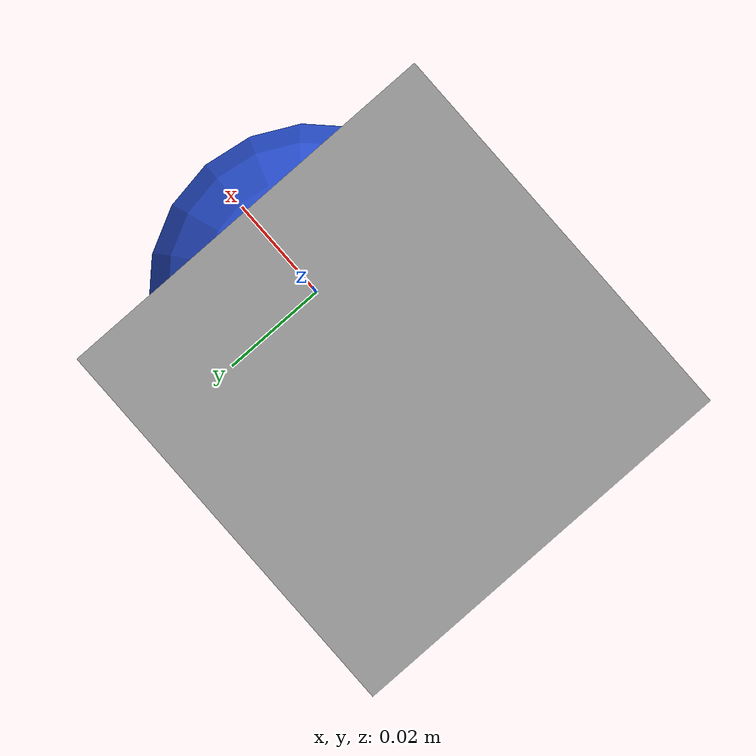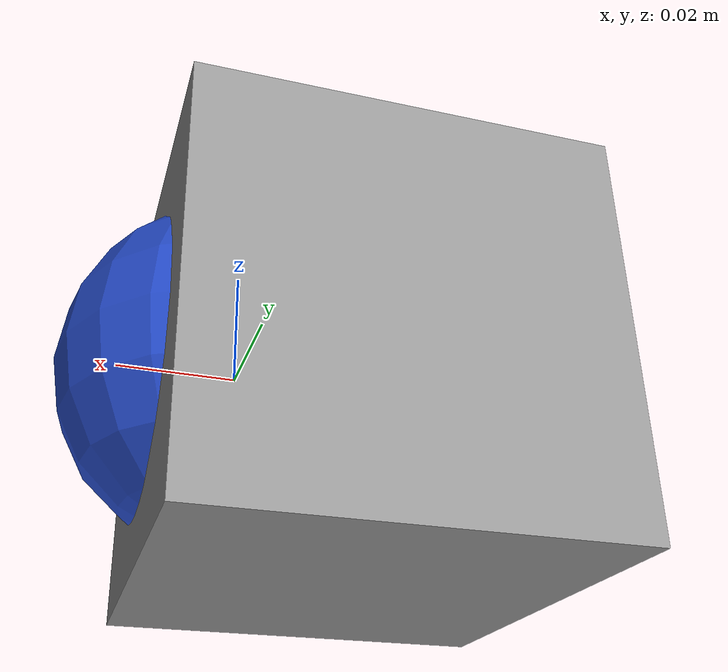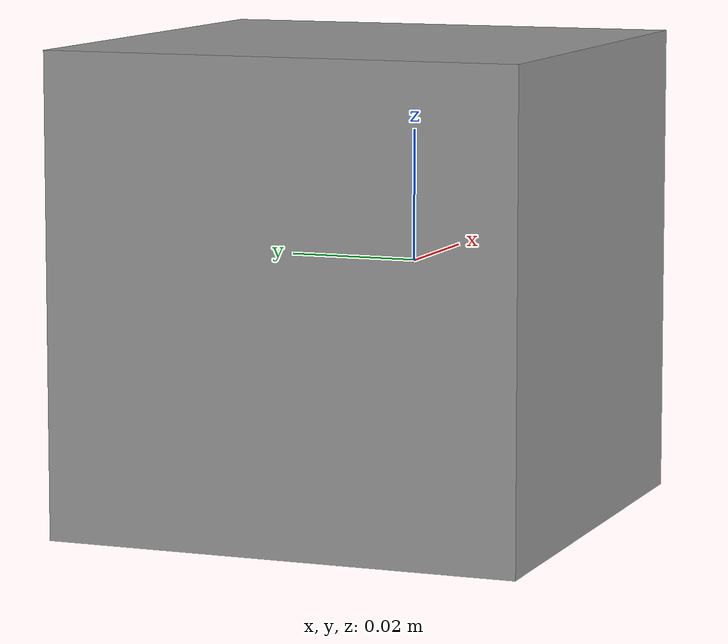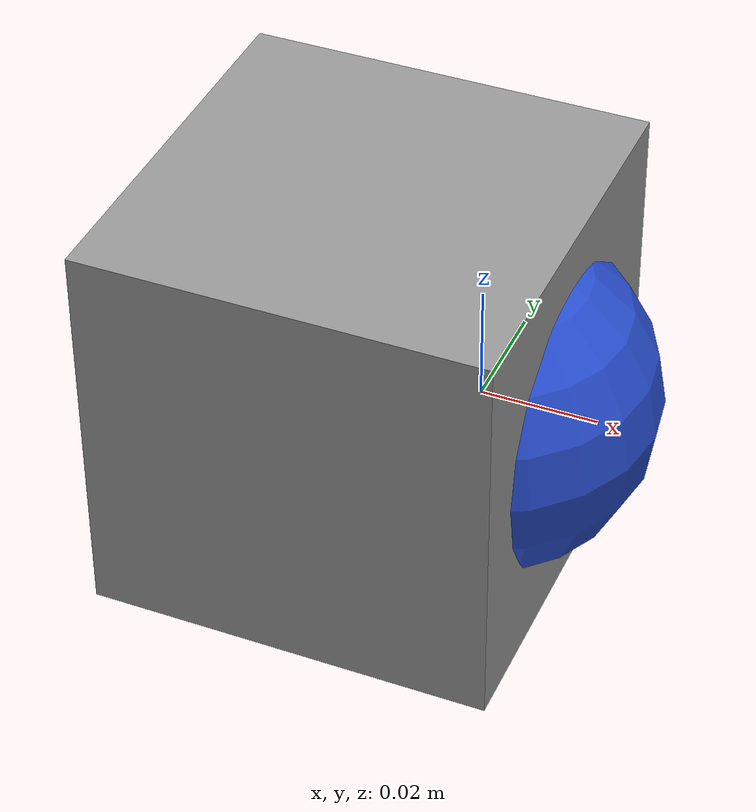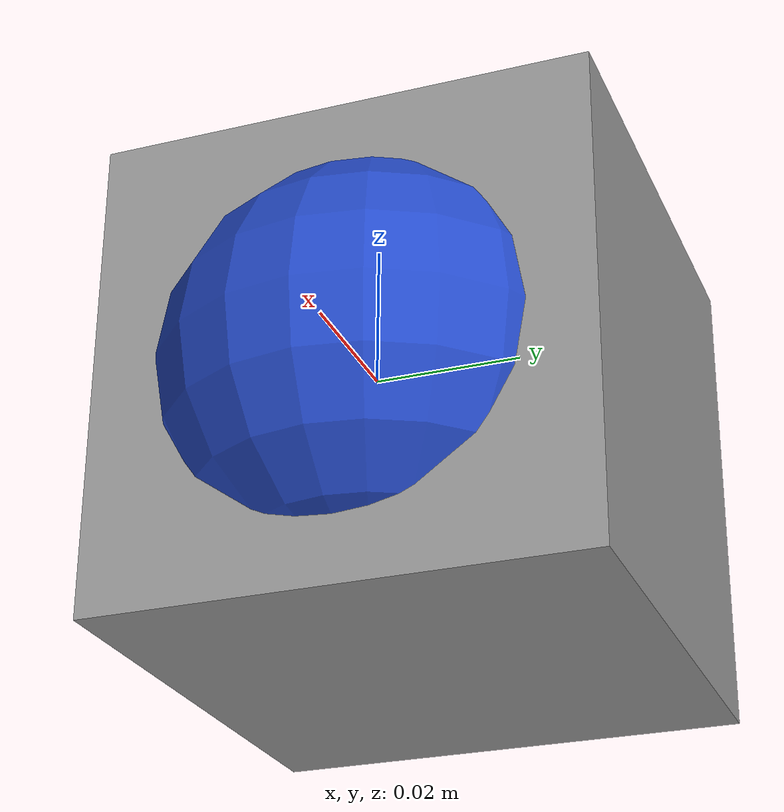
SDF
<?xml version='1.0'?>
<sdf version='1.7'>
  <model name='light'>
    <link name='link'>
      <inertial>
        <mass>0.001</mass>
        <inertia>
          <ixx>0.00000015</ixx>
          <ixy>0</ixy>
          <ixz>0</ixz>
          <iyy>0.00000015</iyy>
          <iyz>0</iyz>
          <izz>0.00000015</izz>
        </inertia>
        <pose>0 0 0 0 0 0</pose>
      </inertial>
      <self_collide>0</self_collide>
      <enable_wind>0</enable_wind>
      <kinematic>0</kinematic>
      <pose>0 0 0 0 0 0</pose>
      <gravity>1</gravity>
      <visual name='orb'>
        <geometry>
          <sphere>
            <radius>0.03</radius>
          </sphere>
        </geometry>
        <material>
          <script>
            <name>Gazebo/BlueGlow</name>
            <uri>file://media/materials/scripts/gazebo.material</uri>
          </script>
          <shader type='pixel'>
            <normal_map>__default__</normal_map>
          </shader>
          <ambient>1 1 1 1</ambient>
          <diffuse>1 1 1 1</diffuse>
          <specular>0 0 0 1</specular>
          <emissive>0.2 0.2 1 1</emissive>
          <lighting>0</lighting>
        </material>
        <pose>0 0 0 0 0 0</pose>
        <cast_shadows>0</cast_shadows>
      </visual>
      <visual name='back'>
        <geometry>
          <box>
            <size>0.07 0.07 0.07</size>
          </box>
        </geometry>
        <material>
          <script>
            <name>Gazebo/Grey</name>
            <uri>file://media/materials/scripts/gazebo.material</uri>
          </script>
        </material>
        <pose>-0.02 0 0 0 0 0</pose>
      </visual>
    </link>
    <static>0</static>
    <allow_auto_disable>1</allow_auto_disable>
  </model>
</sdf>
